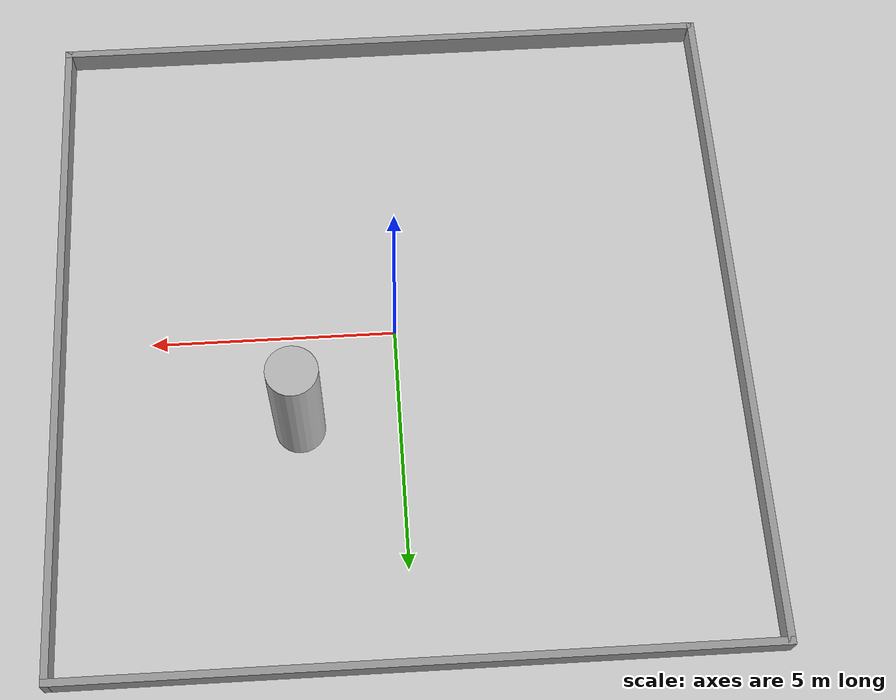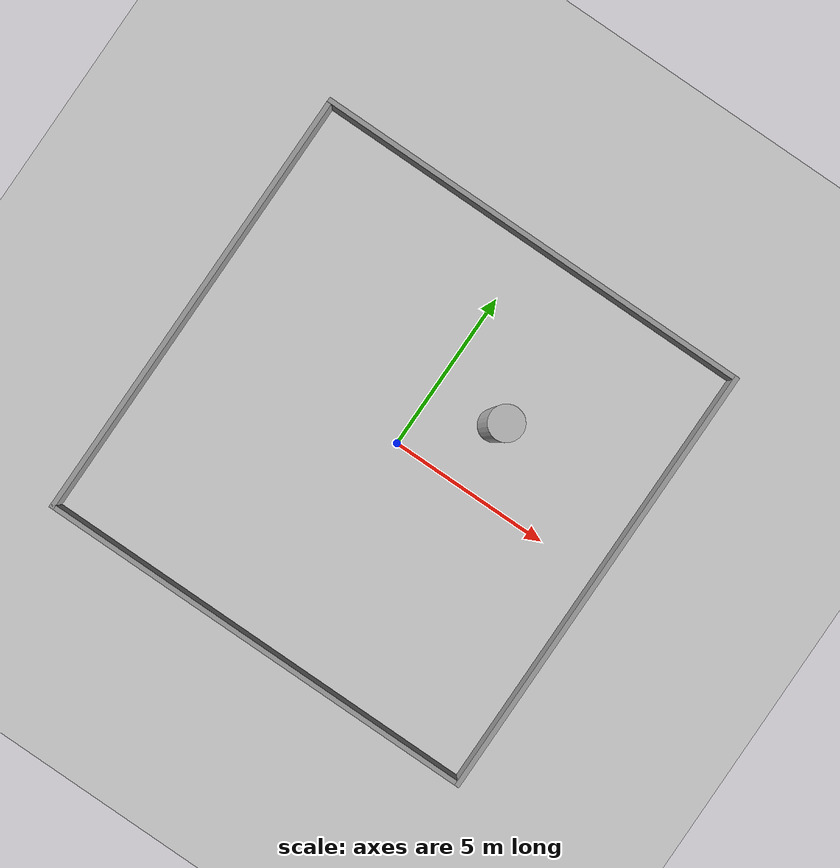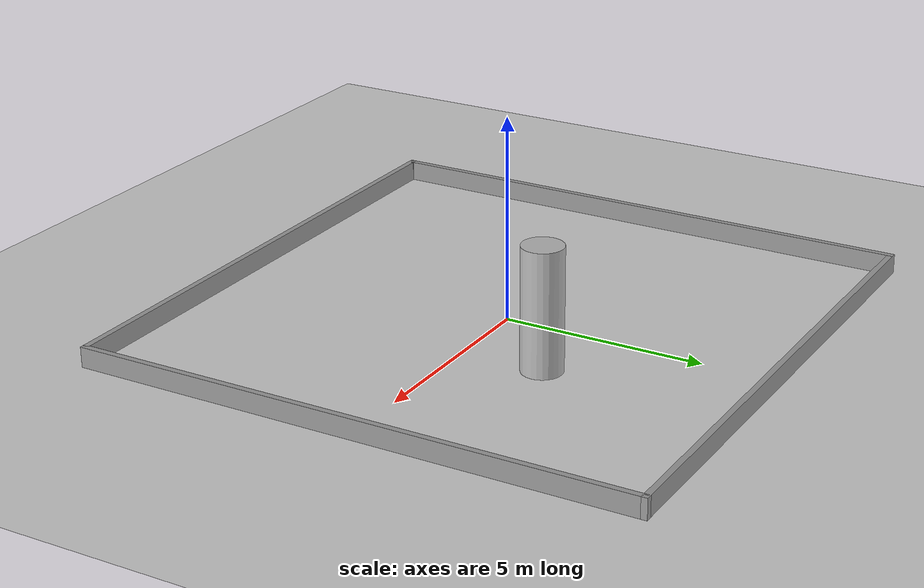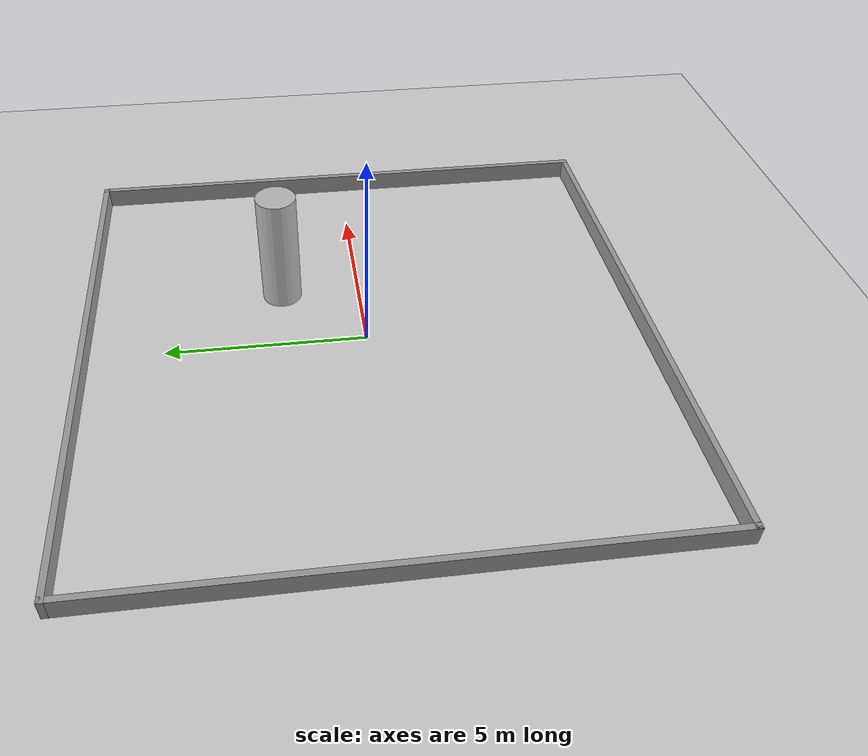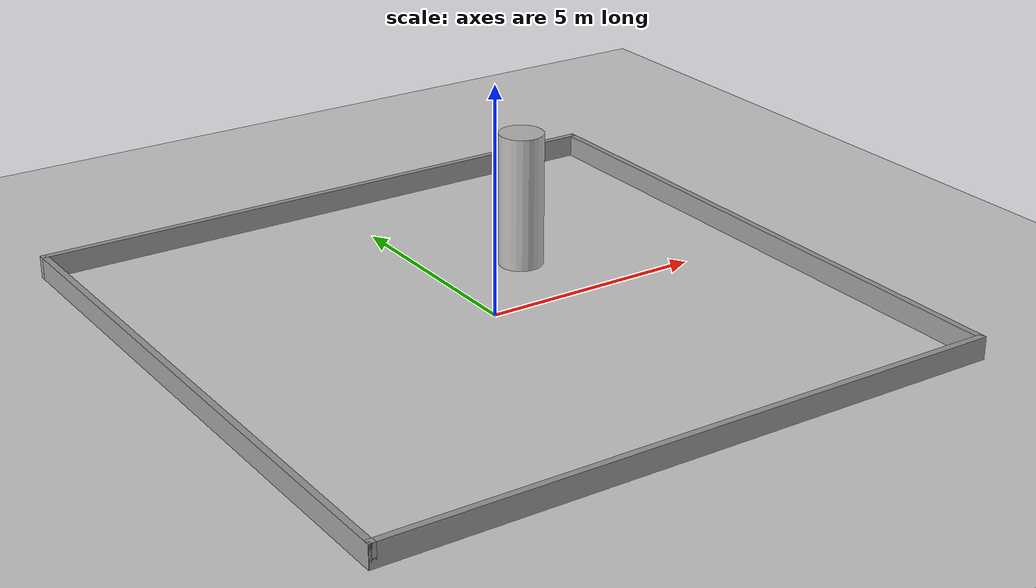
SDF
<sdf version="1.5">
 <world name="default">
  <light name="sun" type="directional">
   <pose>0 0 10 0 -0 0</pose>
   <diffuse>0.8 0.8 0.8 1</diffuse>
   <specular>0.2 0.2 0.2 1</specular>
   <attenuation>
    <range>1000</range>
    <constant>0.9</constant>
    <linear>0.01</linear>
    <quadratic>0.001</quadratic>
   </attenuation>
   <direction>-0.5 0.1 -0.9</direction>
  </light>
  <model name="ground_plane">
   <static>1</static>
   <link name="link">
    <collision name="collision">
     <geometry><plane><normal>0 0 1</normal><size>100 100</size></plane></geometry>
     <surface><friction><ode><mu>100</mu><mu2>50</mu2></ode></friction></surface>
    </collision>
    <visual name="visual">
     <cast_shadows>0</cast_shadows>
     <geometry><plane><normal>0 0 1</normal><size>100 100</size></plane></geometry>
     <material>
      <script><uri>file://media/materials/scripts/gazebo.material</uri><name>Gazebo/Grey</name></script>
     </material>
    </visual>
   </link>
  </model>
  <physics type="ode">
   <max_step_size>0.001</max_step_size>
   <real_time_factor>1</real_time_factor>
   <real_time_update_rate>1000</real_time_update_rate>
   <gravity>0 0 -9.8</gravity>
   <magnetic_field>5.5645e-06 2.28758e-05 -4.23884e-05</magnetic_field>
  </physics>
  <scene><ambient>0.4 0.4 0.4 1</ambient><background>0.7 0.7 0.7 1</background><shadows>1</shadows></scene>
  <spherical_coordinates>
   <surface_model>EARTH_WGS84</surface_model>
   <latitude_deg>0</latitude_deg>
   <longitude_deg>0</longitude_deg>
   <elevation>0</elevation>
   <heading_deg>0</heading_deg>
  </spherical_coordinates>
  <model name="cell">
   <pose>-0.085205 -0.029328 0 0 -0 0</pose>
   <link name="Wall_10">
    <collision name="Wall_10_Collision">
     <geometry><box><size>14 0.15 0.5</size></box></geometry>
     <pose>0 0 0.25 0 -0 0</pose>
    </collision>
    <visual name="Wall_10_Visual">
     <pose>0 0 0.25 0 -0 0</pose>
     <geometry><box><size>14 0.15 0.5</size></box></geometry>
     <material>
      <script><uri>file://media/materials/scripts/gazebo.material</uri><name>Gazebo/Grey</name></script>
      <ambient>1 1 1 1</ambient>
     </material>
    </visual>
    <pose>6.93 -0 0 0 -0 1.5708</pose>
   </link>
   <link name="Wall_11">
    <collision name="Wall_11_Collision">
     <geometry><box><size>14.01 0.15 0.5</size></box></geometry>
     <pose>0 0 0.25 0 -0 0</pose>
    </collision>
    <visual name="Wall_11_Visual">
     <pose>0 0 0.25 0 -0 0</pose>
     <geometry><box><size>14.01 0.15 0.5</size></box></geometry>
     <material>
      <script><uri>file://media/materials/scripts/gazebo.material</uri><name>Gazebo/Grey</name></script>
      <ambient>1 1 1 1</ambient>
     </material>
    </visual>
    <pose>0 6.925 0 0 -0 3.14159</pose>
   </link>
   <link name="Wall_7">
    <collision name="Wall_7_Collision">
     <geometry><box><size>14 0.15 0.5</size></box></geometry>
     <pose>0 0 0.25 0 -0 0</pose>
    </collision>
    <visual name="Wall_7_Visual">
     <pose>0 0 0.25 0 -0 0</pose>
     <geometry><box><size>14 0.15 0.5</size></box></geometry>
     <material>
      <script><uri>file://media/materials/scripts/gazebo.material</uri><name>Gazebo/Grey</name></script>
      <ambient>1 1 1 1</ambient>
     </material>
    </visual>
    <pose>-6.93 -0 0 0 0 -1.5708</pose>
   </link>
   <link name="Wall_8">
    <collision name="Wall_8_Collision">
     <geometry><box><size>0.16 0.15 0.5</size></box></geometry>
     <pose>0 0 0.25 0 -0 0</pose>
    </collision>
    <visual name="Wall_8_Visual">
     <pose>0 0 0.25 0 -0 0</pose>
     <geometry><box><size>0.16 0.15 0.5</size></box></geometry>
     <material>
      <script><uri>file://media/materials/scripts/gazebo.material</uri><name>Gazebo/Grey</name></script>
      <ambient>1 1 1 1</ambient>
     </material>
    </visual>
    <pose>-6.925 -6.925 0 0 -0 0</pose>
   </link>
   <link name="Wall_9">
    <collision name="Wall_9_Collision">
     <geometry><box><size>14 0.15 0.5</size></box></geometry>
     <pose>0 0 0.25 0 -0 0</pose>
    </collision>
    <visual name="Wall_9_Visual">
     <pose>0 0 0.25 0 -0 0</pose>
     <geometry><box><size>14 0.15 0.5</size></box></geometry>
     <material>
      <script><uri>file://media/materials/scripts/gazebo.material</uri><name>Gazebo/Grey</name></script>
      <ambient>1 1 1 1</ambient>
     </material>
    </visual>
    <pose>0.005 -6.925 0 0 -0 0</pose>
   </link>
   <static>1</static>
  </model>
  <model name="food">
   <link name="cylinder">
    <collision name="collision">
     <geometry><cylinder><radius>0.5</radius><length>4</length></cylinder></geometry>
    </collision>
    <visual name="visual">
     <geometry><cylinder><radius>0.5</radius><length>4</length></cylinder></geometry>
    </visual>
   </link>
   <pose>2 2 1 0 0 0</pose>
  </model>
 </world>
</sdf>
